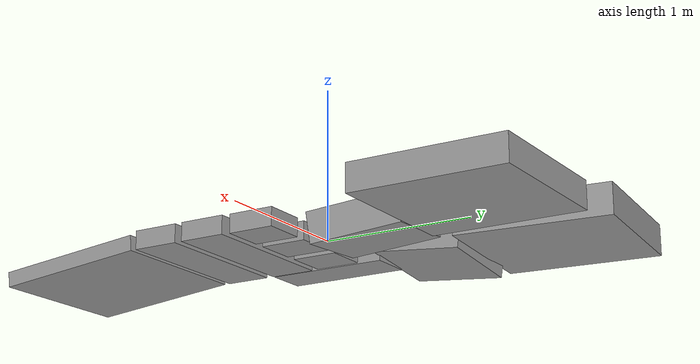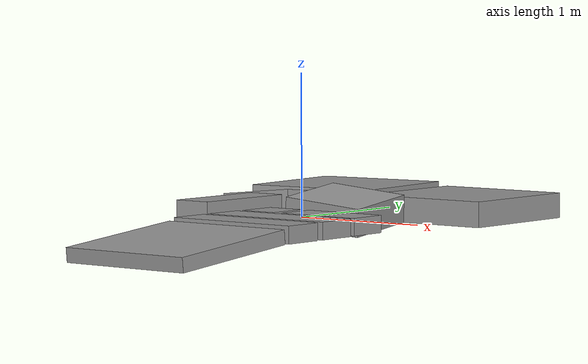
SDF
<?xml version='1.0'?>
<sdf version='1.7'>
  <model name='terrain'>
    <link name='link_0'>
      <inertial>
        <mass>1</mass>
        <inertia>
          <ixx>0.166667</ixx>
          <ixy>0</ixy>
          <ixz>0</ixz>
          <iyy>0.166667</iyy>
          <iyz>0</iyz>
          <izz>0.166667</izz>
        </inertia>
        <pose>0 0 0 0 -0 0</pose>
      </inertial>
      <pose>0.181818 -0.819091 -0.01 0 -0 0</pose>
      <gravity>1</gravity>
      <self_collide>0</self_collide>
      <kinematic>0</kinematic>
      <enable_wind>0</enable_wind>
      <visual name='visual'>
        <pose>0 0 0 0 -0 0</pose>
        <geometry>
          <box>
            <size>1 0.3 0.12</size>
          </box>
        </geometry>
        <material>
          <lighting>1</lighting>
          <script>
            <uri>file://media/materials/scripts/gazebo.material</uri>
            <name>Gazebo/Grey</name>
          </script>
          <shader type='pixel'>
            <normal_map>__default__</normal_map>
          </shader>
          <ambient>0.3 0.3 0.3 1</ambient>
          <diffuse>0.7 0.7 0.7 1</diffuse>
          <specular>0.01 0.01 0.01 1</specular>
          <emissive>0 0 0 1</emissive>
        </material>
        <transparency>0</transparency>
        <cast_shadows>1</cast_shadows>
      </visual>
      <collision name='collision'>
        <laser_retro>0</laser_retro>
        <max_contacts>10</max_contacts>
        <pose>0 0 0 0 -0 0</pose>
        <geometry>
          <box>
            <size>1 1 1</size>
          </box>
        </geometry>
        <surface>
          <friction>
            <ode>
              <mu>1</mu>
              <mu2>1</mu2>
              <fdir1>0 0 0</fdir1>
              <slip1>0</slip1>
              <slip2>0</slip2>
            </ode>
            <torsional>
              <coefficient>1</coefficient>
              <patch_radius>0</patch_radius>
              <surface_radius>0</surface_radius>
              <use_patch_radius>1</use_patch_radius>
              <ode>
                <slip>0</slip>
              </ode>
            </torsional>
          </friction>
          <bounce>
            <restitution_coefficient>0</restitution_coefficient>
            <threshold>1e+06</threshold>
          </bounce>
          <contact>
            <collide_without_contact>0</collide_without_contact>
            <collide_without_contact_bitmask>1</collide_without_contact_bitmask>
            <collide_bitmask>1</collide_bitmask>
            <ode>
              <soft_cfm>0</soft_cfm>
              <soft_erp>0.2</soft_erp>
              <kp>1e+13</kp>
              <kd>1</kd>
              <max_vel>0.01</max_vel>
              <min_depth>0</min_depth>
            </ode>
            <bullet>
              <split_impulse>1</split_impulse>
              <split_impulse_penetration_threshold>-0.01</split_impulse_penetration_threshold>
              <soft_cfm>0</soft_cfm>
              <soft_erp>0.2</soft_erp>
              <kp>1e+13</kp>
              <kd>1</kd>
            </bullet>
          </contact>
        </surface>
      </collision>
    </link>
    <link name='link_0_clone'>
      <inertial>
        <mass>1</mass>
        <inertia>
          <ixx>0.166667</ixx>
          <ixy>0</ixy>
          <ixz>0</ixz>
          <iyy>0.166667</iyy>
          <iyz>0</iyz>
          <izz>0.166667</izz>
        </inertia>
        <pose>0 0 0 0 -0 0</pose>
      </inertial>
      <pose>0.181818 -0.469091 -0.01 0 -0 0</pose>
      <gravity>1</gravity>
      <self_collide>0</self_collide>
      <kinematic>0</kinematic>
      <enable_wind>0</enable_wind>
      <visual name='visual'>
        <pose>0 0 0 0 -0 0</pose>
        <geometry>
          <box>
            <size>1 0.3 0.12</size>
          </box>
        </geometry>
        <material>
          <lighting>1</lighting>
          <script>
            <uri>file://media/materials/scripts/gazebo.material</uri>
            <name>Gazebo/Grey</name>
          </script>
          <shader type='pixel'>
            <normal_map>__default__</normal_map>
          </shader>
          <ambient>0.3 0.3 0.3 1</ambient>
          <diffuse>0.7 0.7 0.7 1</diffuse>
          <specular>0.01 0.01 0.01 1</specular>
          <emissive>0 0 0 1</emissive>
        </material>
        <transparency>0</transparency>
        <cast_shadows>1</cast_shadows>
      </visual>
      <collision name='collision'>
        <laser_retro>0</laser_retro>
        <max_contacts>10</max_contacts>
        <pose>0 0 0 0 -0 0</pose>
        <geometry>
          <box>
            <size>1 1 1</size>
          </box>
        </geometry>
        <surface>
          <friction>
            <ode>
              <mu>1</mu>
              <mu2>1</mu2>
              <fdir1>0 0 0</fdir1>
              <slip1>0</slip1>
              <slip2>0</slip2>
            </ode>
            <torsional>
              <coefficient>1</coefficient>
              <patch_radius>0</patch_radius>
              <surface_radius>0</surface_radius>
              <use_patch_radius>1</use_patch_radius>
              <ode>
                <slip>0</slip>
              </ode>
            </torsional>
          </friction>
          <bounce>
            <restitution_coefficient>0</restitution_coefficient>
            <threshold>1e+06</threshold>
          </bounce>
          <contact>
            <collide_without_contact>0</collide_without_contact>
            <collide_without_contact_bitmask>1</collide_without_contact_bitmask>
            <collide_bitmask>1</collide_bitmask>
            <ode>
              <soft_cfm>0</soft_cfm>
              <soft_erp>0.2</soft_erp>
              <kp>1e+13</kp>
              <kd>1</kd>
              <max_vel>0.01</max_vel>
              <min_depth>0</min_depth>
            </ode>
            <bullet>
              <split_impulse>1</split_impulse>
              <split_impulse_penetration_threshold>-0.01</split_impulse_penetration_threshold>
              <soft_cfm>0</soft_cfm>
              <soft_erp>0.2</soft_erp>
              <kp>1e+13</kp>
              <kd>1</kd>
            </bullet>
          </contact>
        </surface>
      </collision>
    </link>
    <link name='link_1'>
      <inertial>
        <mass>1</mass>
        <inertia>
          <ixx>0.166667</ixx>
          <ixy>0</ixy>
          <ixz>0</ixz>
          <iyy>0.166667</iyy>
          <iyz>0</iyz>
          <izz>0.166667</izz>
        </inertia>
        <pose>0 0 0 0 -0 0</pose>
      </inertial>
      <pose>-0.168182 -0.119091 -0.01 0 -0 0</pose>
      <gravity>1</gravity>
      <self_collide>0</self_collide>
      <kinematic>0</kinematic>
      <enable_wind>0</enable_wind>
      <visual name='visual'>
        <pose>0 0 0 0 -0 0</pose>
        <geometry>
          <box>
            <size>0.28 0.3 0.12</size>
          </box>
        </geometry>
        <material>
          <lighting>1</lighting>
          <script>
            <uri>file://media/materials/scripts/gazebo.material</uri>
            <name>Gazebo/Grey</name>
          </script>
          <shader type='pixel'>
            <normal_map>__default__</normal_map>
          </shader>
          <ambient>0.3 0.3 0.3 1</ambient>
          <diffuse>0.7 0.7 0.7 1</diffuse>
          <specular>0.01 0.01 0.01 1</specular>
          <emissive>0 0 0 1</emissive>
        </material>
        <transparency>0</transparency>
        <cast_shadows>1</cast_shadows>
      </visual>
      <collision name='collision'>
        <laser_retro>0</laser_retro>
        <max_contacts>10</max_contacts>
        <pose>0 0 0 0 -0 0</pose>
        <geometry>
          <box>
            <size>1 1 1</size>
          </box>
        </geometry>
        <surface>
          <friction>
            <ode>
              <mu>1</mu>
              <mu2>1</mu2>
              <fdir1>0 0 0</fdir1>
              <slip1>0</slip1>
              <slip2>0</slip2>
            </ode>
            <torsional>
              <coefficient>1</coefficient>
              <patch_radius>0</patch_radius>
              <surface_radius>0</surface_radius>
              <use_patch_radius>1</use_patch_radius>
              <ode>
                <slip>0</slip>
              </ode>
            </torsional>
          </friction>
          <bounce>
            <restitution_coefficient>0</restitution_coefficient>
            <threshold>1e+06</threshold>
          </bounce>
          <contact>
            <collide_without_contact>0</collide_without_contact>
            <collide_without_contact_bitmask>1</collide_without_contact_bitmask>
            <collide_bitmask>1</collide_bitmask>
            <ode>
              <soft_cfm>0</soft_cfm>
              <soft_erp>0.2</soft_erp>
              <kp>1e+13</kp>
              <kd>1</kd>
              <max_vel>0.01</max_vel>
              <min_depth>0</min_depth>
            </ode>
            <bullet>
              <split_impulse>1</split_impulse>
              <split_impulse_penetration_threshold>-0.01</split_impulse_penetration_threshold>
              <soft_cfm>0</soft_cfm>
              <soft_erp>0.2</soft_erp>
              <kp>1e+13</kp>
              <kd>1</kd>
            </bullet>
          </contact>
        </surface>
      </collision>
    </link>
    <link name='link_1_clone'>
      <inertial>
        <mass>1</mass>
        <inertia>
          <ixx>0.166667</ixx>
          <ixy>0</ixy>
          <ixz>0</ixz>
          <iyy>0.166667</iyy>
          <iyz>0</iyz>
          <izz>0.166667</izz>
        </inertia>
        <pose>0 0 0 0 -0 0</pose>
      </inertial>
      <pose>0.181818 -0.119091 -0.01 0 -0 0</pose>
      <gravity>1</gravity>
      <self_collide>0</self_collide>
      <kinematic>0</kinematic>
      <enable_wind>0</enable_wind>
      <visual name='visual'>
        <pose>0 0 0 0 -0 0</pose>
        <geometry>
          <box>
            <size>0.28 0.3 0.12</size>
          </box>
        </geometry>
        <material>
          <lighting>1</lighting>
          <script>
            <uri>file://media/materials/scripts/gazebo.material</uri>
            <name>Gazebo/Grey</name>
          </script>
          <shader type='pixel'>
            <normal_map>__default__</normal_map>
          </shader>
          <ambient>0.3 0.3 0.3 1</ambient>
          <diffuse>0.7 0.7 0.7 1</diffuse>
          <specular>0.01 0.01 0.01 1</specular>
          <emissive>0 0 0 1</emissive>
        </material>
        <transparency>0</transparency>
        <cast_shadows>1</cast_shadows>
      </visual>
      <collision name='collision'>
        <laser_retro>0</laser_retro>
        <max_contacts>10</max_contacts>
        <pose>0 0 0 0 -0 0</pose>
        <geometry>
          <box>
            <size>1 1 1</size>
          </box>
        </geometry>
        <surface>
          <friction>
            <ode>
              <mu>1</mu>
              <mu2>1</mu2>
              <fdir1>0 0 0</fdir1>
              <slip1>0</slip1>
              <slip2>0</slip2>
            </ode>
            <torsional>
              <coefficient>1</coefficient>
              <patch_radius>0</patch_radius>
              <surface_radius>0</surface_radius>
              <use_patch_radius>1</use_patch_radius>
              <ode>
                <slip>0</slip>
              </ode>
            </torsional>
          </friction>
          <bounce>
            <restitution_coefficient>0</restitution_coefficient>
            <threshold>1e+06</threshold>
          </bounce>
          <contact>
            <collide_without_contact>0</collide_without_contact>
            <collide_without_contact_bitmask>1</collide_without_contact_bitmask>
            <collide_bitmask>1</collide_bitmask>
            <ode>
              <soft_cfm>0</soft_cfm>
              <soft_erp>0.2</soft_erp>
              <kp>1e+13</kp>
              <kd>1</kd>
              <max_vel>0.01</max_vel>
              <min_depth>0</min_depth>
            </ode>
            <bullet>
              <split_impulse>1</split_impulse>
              <split_impulse_penetration_threshold>-0.01</split_impulse_penetration_threshold>
              <soft_cfm>0</soft_cfm>
              <soft_erp>0.2</soft_erp>
              <kp>1e+13</kp>
              <kd>1</kd>
            </bullet>
          </contact>
        </surface>
      </collision>
    </link>
    <link name='link_1_clone_0'>
      <inertial>
        <mass>1</mass>
        <inertia>
          <ixx>0.166667</ixx>
          <ixy>0</ixy>
          <ixz>0</ixz>
          <iyy>0.166667</iyy>
          <iyz>0</iyz>
          <izz>0.166667</izz>
        </inertia>
        <pose>0 0 0 0 -0 0</pose>
      </inertial>
      <pose>-0.468182 -0.219091 0.03 0 -0 0</pose>
      <gravity>1</gravity>
      <self_collide>0</self_collide>
      <kinematic>0</kinematic>
      <enable_wind>0</enable_wind>
      <visual name='visual'>
        <pose>0 0 0 0 -0 0</pose>
        <geometry>
          <box>
            <size>0.28 0.8 0.2</size>
          </box>
        </geometry>
        <material>
          <lighting>1</lighting>
          <script>
            <uri>file://media/materials/scripts/gazebo.material</uri>
            <name>Gazebo/Grey</name>
          </script>
          <shader type='pixel'>
            <normal_map>__default__</normal_map>
          </shader>
          <ambient>0.3 0.3 0.3 1</ambient>
          <diffuse>0.7 0.7 0.7 1</diffuse>
          <specular>0.01 0.01 0.01 1</specular>
          <emissive>0 0 0 1</emissive>
        </material>
        <transparency>0</transparency>
        <cast_shadows>1</cast_shadows>
      </visual>
      <collision name='collision'>
        <laser_retro>0</laser_retro>
        <max_contacts>10</max_contacts>
        <pose>0 0 0 0 -0 0</pose>
        <geometry>
          <box>
            <size>1 1 1</size>
          </box>
        </geometry>
        <surface>
          <friction>
            <ode>
              <mu>1</mu>
              <mu2>1</mu2>
              <fdir1>0 0 0</fdir1>
              <slip1>0</slip1>
              <slip2>0</slip2>
            </ode>
            <torsional>
              <coefficient>1</coefficient>
              <patch_radius>0</patch_radius>
              <surface_radius>0</surface_radius>
              <use_patch_radius>1</use_patch_radius>
              <ode>
                <slip>0</slip>
              </ode>
            </torsional>
          </friction>
          <bounce>
            <restitution_coefficient>0</restitution_coefficient>
            <threshold>1e+06</threshold>
          </bounce>
          <contact>
            <collide_without_contact>0</collide_without_contact>
            <collide_without_contact_bitmask>1</collide_without_contact_bitmask>
            <collide_bitmask>1</collide_bitmask>
            <ode>
              <soft_cfm>0</soft_cfm>
              <soft_erp>0.2</soft_erp>
              <kp>1e+13</kp>
              <kd>1</kd>
              <max_vel>0.01</max_vel>
              <min_depth>0</min_depth>
            </ode>
            <bullet>
              <split_impulse>1</split_impulse>
              <split_impulse_penetration_threshold>-0.01</split_impulse_penetration_threshold>
              <soft_cfm>0</soft_cfm>
              <soft_erp>0.2</soft_erp>
              <kp>1e+13</kp>
              <kd>1</kd>
            </bullet>
          </contact>
        </surface>
      </collision>
    </link>
    <link name='link_1_clone_clone'>
      <inertial>
        <mass>1</mass>
        <inertia>
          <ixx>0.166667</ixx>
          <ixy>0</ixy>
          <ixz>0</ixz>
          <iyy>0.166667</iyy>
          <iyz>0</iyz>
          <izz>0.166667</izz>
        </inertia>
        <pose>0 0 0 0 -0 0</pose>
      </inertial>
      <pose>0.531818 -0.119091 -0.01 0 -0 0</pose>
      <gravity>1</gravity>
      <self_collide>0</self_collide>
      <kinematic>0</kinematic>
      <enable_wind>0</enable_wind>
      <visual name='visual'>
        <pose>0 0 0 0 -0 0</pose>
        <geometry>
          <box>
            <size>0.28 0.3 0.12</size>
          </box>
        </geometry>
        <material>
          <lighting>1</lighting>
          <script>
            <uri>file://media/materials/scripts/gazebo.material</uri>
            <name>Gazebo/Grey</name>
          </script>
          <shader type='pixel'>
            <normal_map>__default__</normal_map>
          </shader>
          <ambient>0.3 0.3 0.3 1</ambient>
          <diffuse>0.7 0.7 0.7 1</diffuse>
          <specular>0.01 0.01 0.01 1</specular>
          <emissive>0 0 0 1</emissive>
        </material>
        <transparency>0</transparency>
        <cast_shadows>1</cast_shadows>
      </visual>
      <collision name='collision'>
        <laser_retro>0</laser_retro>
        <max_contacts>10</max_contacts>
        <pose>0 0 0 0 -0 0</pose>
        <geometry>
          <box>
            <size>1 1 1</size>
          </box>
        </geometry>
        <surface>
          <friction>
            <ode>
              <mu>1</mu>
              <mu2>1</mu2>
              <fdir1>0 0 0</fdir1>
              <slip1>0</slip1>
              <slip2>0</slip2>
            </ode>
            <torsional>
              <coefficient>1</coefficient>
              <patch_radius>0</patch_radius>
              <surface_radius>0</surface_radius>
              <use_patch_radius>1</use_patch_radius>
              <ode>
                <slip>0</slip>
              </ode>
            </torsional>
          </friction>
          <bounce>
            <restitution_coefficient>0</restitution_coefficient>
            <threshold>1e+06</threshold>
          </bounce>
          <contact>
            <collide_without_contact>0</collide_without_contact>
            <collide_without_contact_bitmask>1</collide_without_contact_bitmask>
            <collide_bitmask>1</collide_bitmask>
            <ode>
              <soft_cfm>0</soft_cfm>
              <soft_erp>0.2</soft_erp>
              <kp>1e+13</kp>
              <kd>1</kd>
              <max_vel>0.01</max_vel>
              <min_depth>0</min_depth>
            </ode>
            <bullet>
              <split_impulse>1</split_impulse>
              <split_impulse_penetration_threshold>-0.01</split_impulse_penetration_threshold>
              <soft_cfm>0</soft_cfm>
              <soft_erp>0.2</soft_erp>
              <kp>1e+13</kp>
              <kd>1</kd>
            </bullet>
          </contact>
        </surface>
      </collision>
    </link>
    <link name='link_2'>
      <inertial>
        <mass>1</mass>
        <inertia>
          <ixx>0.166667</ixx>
          <ixy>0</ixy>
          <ixz>0</ixz>
          <iyy>0.166667</iyy>
          <iyz>0</iyz>
          <izz>0.166667</izz>
        </inertia>
        <pose>0 0 0 0 -0 0</pose>
      </inertial>
      <pose>0.181818 -1.50909 -0.07 0.1 -0 0</pose>
      <gravity>1</gravity>
      <self_collide>0</self_collide>
      <kinematic>0</kinematic>
      <enable_wind>0</enable_wind>
      <visual name='visual'>
        <pose>0 0 0 0 -0 0</pose>
        <geometry>
          <box>
            <size>1 1 0.1</size>
          </box>
        </geometry>
        <material>
          <lighting>1</lighting>
          <script>
            <uri>file://media/materials/scripts/gazebo.material</uri>
            <name>Gazebo/Grey</name>
          </script>
          <shader type='pixel'>
            <normal_map>__default__</normal_map>
          </shader>
          <ambient>0.3 0.3 0.3 1</ambient>
          <diffuse>0.7 0.7 0.7 1</diffuse>
          <specular>0.01 0.01 0.01 1</specular>
          <emissive>0 0 0 1</emissive>
        </material>
        <transparency>0</transparency>
        <cast_shadows>1</cast_shadows>
      </visual>
      <collision name='collision'>
        <laser_retro>0</laser_retro>
        <max_contacts>10</max_contacts>
        <pose>0 0 0 0 -0 0</pose>
        <geometry>
          <box>
            <size>1 1 1</size>
          </box>
        </geometry>
        <surface>
          <friction>
            <ode>
              <mu>1</mu>
              <mu2>1</mu2>
              <fdir1>0 0 0</fdir1>
              <slip1>0</slip1>
              <slip2>0</slip2>
            </ode>
            <torsional>
              <coefficient>1</coefficient>
              <patch_radius>0</patch_radius>
              <surface_radius>0</surface_radius>
              <use_patch_radius>1</use_patch_radius>
              <ode>
                <slip>0</slip>
              </ode>
            </torsional>
          </friction>
          <bounce>
            <restitution_coefficient>0</restitution_coefficient>
            <threshold>1e+06</threshold>
          </bounce>
          <contact>
            <collide_without_contact>0</collide_without_contact>
            <collide_without_contact_bitmask>1</collide_without_contact_bitmask>
            <collide_bitmask>1</collide_bitmask>
            <ode>
              <soft_cfm>0</soft_cfm>
              <soft_erp>0.2</soft_erp>
              <kp>1e+13</kp>
              <kd>1</kd>
              <max_vel>0.01</max_vel>
              <min_depth>0</min_depth>
            </ode>
            <bullet>
              <split_impulse>1</split_impulse>
              <split_impulse_penetration_threshold>-0.01</split_impulse_penetration_threshold>
              <soft_cfm>0</soft_cfm>
              <soft_erp>0.2</soft_erp>
              <kp>1e+13</kp>
              <kd>1</kd>
            </bullet>
          </contact>
        </surface>
      </collision>
    </link>
    <link name='link_3'>
      <inertial>
        <mass>1</mass>
        <inertia>
          <ixx>0.166667</ixx>
          <ixy>0</ixy>
          <ixz>0</ixz>
          <iyy>0.166667</iyy>
          <iyz>0</iyz>
          <izz>0.166667</izz>
        </inertia>
        <pose>0 0 0 0 -0 0</pose>
      </inertial>
      <pose>0.081818 0.380909 0.03 0.1 0.1 0.1</pose>
      <gravity>1</gravity>
      <self_collide>0</self_collide>
      <kinematic>0</kinematic>
      <enable_wind>0</enable_wind>
      <visual name='visual'>
        <pose>0 0 0 0 -0 0</pose>
        <geometry>
          <box>
            <size>0.6 0.6 0.2</size>
          </box>
        </geometry>
        <material>
          <lighting>1</lighting>
          <script>
            <uri>file://media/materials/scripts/gazebo.material</uri>
            <name>Gazebo/Grey</name>
          </script>
          <shader type='pixel'>
            <normal_map>__default__</normal_map>
          </shader>
          <ambient>0.3 0.3 0.3 1</ambient>
          <diffuse>0.7 0.7 0.7 1</diffuse>
          <specular>0.01 0.01 0.01 1</specular>
          <emissive>0 0 0 1</emissive>
        </material>
        <transparency>0</transparency>
        <cast_shadows>1</cast_shadows>
      </visual>
      <collision name='collision'>
        <laser_retro>0</laser_retro>
        <max_contacts>10</max_contacts>
        <pose>0 0 0 0 -0 0</pose>
        <geometry>
          <box>
            <size>1 1 1</size>
          </box>
        </geometry>
        <surface>
          <friction>
            <ode>
              <mu>1</mu>
              <mu2>1</mu2>
              <fdir1>0 0 0</fdir1>
              <slip1>0</slip1>
              <slip2>0</slip2>
            </ode>
            <torsional>
              <coefficient>1</coefficient>
              <patch_radius>0</patch_radius>
              <surface_radius>0</surface_radius>
              <use_patch_radius>1</use_patch_radius>
              <ode>
                <slip>0</slip>
              </ode>
            </torsional>
          </friction>
          <bounce>
            <restitution_coefficient>0</restitution_coefficient>
            <threshold>1e+06</threshold>
          </bounce>
          <contact>
            <collide_without_contact>0</collide_without_contact>
            <collide_without_contact_bitmask>1</collide_without_contact_bitmask>
            <collide_bitmask>1</collide_bitmask>
            <ode>
              <soft_cfm>0</soft_cfm>
              <soft_erp>0.2</soft_erp>
              <kp>1e+13</kp>
              <kd>1</kd>
              <max_vel>0.01</max_vel>
              <min_depth>0</min_depth>
            </ode>
            <bullet>
              <split_impulse>1</split_impulse>
              <split_impulse_penetration_threshold>-0.01</split_impulse_penetration_threshold>
              <soft_cfm>0</soft_cfm>
              <soft_erp>0.2</soft_erp>
              <kp>1e+13</kp>
              <kd>1</kd>
            </bullet>
          </contact>
        </surface>
      </collision>
    </link>
    <link name='link_3_clone'>
      <inertial>
        <mass>1</mass>
        <inertia>
          <ixx>0.166667</ixx>
          <ixy>0</ixy>
          <ixz>0</ixz>
          <iyy>0.166667</iyy>
          <iyz>0</iyz>
          <izz>0.166667</izz>
        </inertia>
        <pose>0 0 0 0 -0 0</pose>
      </inertial>
      <pose>-0.568182 0.480909 0.01 -0.1 -0.1 0</pose>
      <gravity>1</gravity>
      <self_collide>0</self_collide>
      <kinematic>0</kinematic>
      <enable_wind>0</enable_wind>
      <visual name='visual'>
        <pose>0 0 0 0 -0 0</pose>
        <geometry>
          <box>
            <size>0.6 0.6 0.2</size>
          </box>
        </geometry>
        <material>
          <lighting>1</lighting>
          <script>
            <uri>file://media/materials/scripts/gazebo.material</uri>
            <name>Gazebo/Grey</name>
          </script>
          <shader type='pixel'>
            <normal_map>__default__</normal_map>
          </shader>
          <ambient>0.3 0.3 0.3 1</ambient>
          <diffuse>0.7 0.7 0.7 1</diffuse>
          <specular>0.01 0.01 0.01 1</specular>
          <emissive>0 0 0 1</emissive>
        </material>
        <transparency>0</transparency>
        <cast_shadows>1</cast_shadows>
      </visual>
      <collision name='collision'>
        <laser_retro>0</laser_retro>
        <max_contacts>10</max_contacts>
        <pose>0 0 0 0 -0 0</pose>
        <geometry>
          <box>
            <size>1 1 1</size>
          </box>
        </geometry>
        <surface>
          <friction>
            <ode>
              <mu>1</mu>
              <mu2>1</mu2>
              <fdir1>0 0 0</fdir1>
              <slip1>0</slip1>
              <slip2>0</slip2>
            </ode>
            <torsional>
              <coefficient>1</coefficient>
              <patch_radius>0</patch_radius>
              <surface_radius>0</surface_radius>
              <use_patch_radius>1</use_patch_radius>
              <ode>
                <slip>0</slip>
              </ode>
            </torsional>
          </friction>
          <bounce>
            <restitution_coefficient>0</restitution_coefficient>
            <threshold>1e+06</threshold>
          </bounce>
          <contact>
            <collide_without_contact>0</collide_without_contact>
            <collide_without_contact_bitmask>1</collide_without_contact_bitmask>
            <collide_bitmask>1</collide_bitmask>
            <ode>
              <soft_cfm>0</soft_cfm>
              <soft_erp>0.2</soft_erp>
              <kp>1e+13</kp>
              <kd>1</kd>
              <max_vel>0.01</max_vel>
              <min_depth>0</min_depth>
            </ode>
            <bullet>
              <split_impulse>1</split_impulse>
              <split_impulse_penetration_threshold>-0.01</split_impulse_penetration_threshold>
              <soft_cfm>0</soft_cfm>
              <soft_erp>0.2</soft_erp>
              <kp>1e+13</kp>
              <kd>1</kd>
            </bullet>
          </contact>
        </surface>
      </collision>
    </link>
    <link name='link_4'>
      <inertial>
        <mass>1</mass>
        <inertia>
          <ixx>0.166667</ixx>
          <ixy>0</ixy>
          <ixz>0</ixz>
          <iyy>0.166667</iyy>
          <iyz>0</iyz>
          <izz>0.166667</izz>
        </inertia>
        <pose>0 0 0 0 -0 0</pose>
      </inertial>
      <pose>-0.618182 1.28091 0.03 0 -0 0.1</pose>
      <gravity>1</gravity>
      <self_collide>0</self_collide>
      <kinematic>0</kinematic>
      <enable_wind>0</enable_wind>
      <visual name='visual'>
        <pose>0 0 0 0 -0 0</pose>
        <geometry>
          <box>
            <size>1 1 0.2</size>
          </box>
        </geometry>
        <material>
          <lighting>1</lighting>
          <script>
            <uri>file://media/materials/scripts/gazebo.material</uri>
            <name>Gazebo/Grey</name>
          </script>
          <shader type='pixel'>
            <normal_map>__default__</normal_map>
          </shader>
          <ambient>0.3 0.3 0.3 1</ambient>
          <diffuse>0.7 0.7 0.7 1</diffuse>
          <specular>0.01 0.01 0.01 1</specular>
          <emissive>0 0 0 1</emissive>
        </material>
        <transparency>0</transparency>
        <cast_shadows>1</cast_shadows>
      </visual>
      <collision name='collision'>
        <laser_retro>0</laser_retro>
        <max_contacts>10</max_contacts>
        <pose>0 0 0 0 -0 0</pose>
        <geometry>
          <box>
            <size>1 1 1</size>
          </box>
        </geometry>
        <surface>
          <friction>
            <ode>
              <mu>1</mu>
              <mu2>1</mu2>
              <fdir1>0 0 0</fdir1>
              <slip1>0</slip1>
              <slip2>0</slip2>
            </ode>
            <torsional>
              <coefficient>1</coefficient>
              <patch_radius>0</patch_radius>
              <surface_radius>0</surface_radius>
              <use_patch_radius>1</use_patch_radius>
              <ode>
                <slip>0</slip>
              </ode>
            </torsional>
          </friction>
          <bounce>
            <restitution_coefficient>0</restitution_coefficient>
            <threshold>1e+06</threshold>
          </bounce>
          <contact>
            <collide_without_contact>0</collide_without_contact>
            <collide_without_contact_bitmask>1</collide_without_contact_bitmask>
            <collide_bitmask>1</collide_bitmask>
            <ode>
              <soft_cfm>0</soft_cfm>
              <soft_erp>0.2</soft_erp>
              <kp>1e+13</kp>
              <kd>1</kd>
              <max_vel>0.01</max_vel>
              <min_depth>0</min_depth>
            </ode>
            <bullet>
              <split_impulse>1</split_impulse>
              <split_impulse_penetration_threshold>-0.01</split_impulse_penetration_threshold>
              <soft_cfm>0</soft_cfm>
              <soft_erp>0.2</soft_erp>
              <kp>1e+13</kp>
              <kd>1</kd>
            </bullet>
          </contact>
        </surface>
      </collision>
    </link>
    <link name='link_5'>
      <inertial>
        <mass>1</mass>
        <inertia>
          <ixx>0.166667</ixx>
          <ixy>0</ixy>
          <ixz>0</ixz>
          <iyy>0.166667</iyy>
          <iyz>0</iyz>
          <izz>0.166667</izz>
        </inertia>
        <pose>0 0 0 0 -0 0</pose>
      </inertial>
      <pose>0.481818 1.23091 0.02 0 -0 0</pose>
      <gravity>1</gravity>
      <self_collide>0</self_collide>
      <kinematic>0</kinematic>
      <enable_wind>0</enable_wind>
      <visual name='visual'>
        <pose>0 0 0 0 -0 0</pose>
        <geometry>
          <box>
            <size>1 1 0.18</size>
          </box>
        </geometry>
        <material>
          <lighting>1</lighting>
          <script>
            <uri>file://media/materials/scripts/gazebo.material</uri>
            <name>Gazebo/Grey</name>
          </script>
          <shader type='pixel'>
            <normal_map>__default__</normal_map>
          </shader>
          <ambient>0.3 0.3 0.3 1</ambient>
          <diffuse>0.7 0.7 0.7 1</diffuse>
          <specular>0.01 0.01 0.01 1</specular>
          <emissive>0 0 0 1</emissive>
        </material>
        <transparency>0</transparency>
        <cast_shadows>1</cast_shadows>
      </visual>
      <collision name='collision'>
        <laser_retro>0</laser_retro>
        <max_contacts>10</max_contacts>
        <pose>0 0 0 0 -0 0</pose>
        <geometry>
          <box>
            <size>1 1 1</size>
          </box>
        </geometry>
        <surface>
          <friction>
            <ode>
              <mu>1</mu>
              <mu2>1</mu2>
              <fdir1>0 0 0</fdir1>
              <slip1>0</slip1>
              <slip2>0</slip2>
            </ode>
            <torsional>
              <coefficient>1</coefficient>
              <patch_radius>0</patch_radius>
              <surface_radius>0</surface_radius>
              <use_patch_radius>1</use_patch_radius>
              <ode>
                <slip>0</slip>
              </ode>
            </torsional>
          </friction>
          <bounce>
            <restitution_coefficient>0</restitution_coefficient>
            <threshold>1e+06</threshold>
          </bounce>
          <contact>
            <collide_without_contact>0</collide_without_contact>
            <collide_without_contact_bitmask>1</collide_without_contact_bitmask>
            <collide_bitmask>1</collide_bitmask>
            <ode>
              <soft_cfm>0</soft_cfm>
              <soft_erp>0.2</soft_erp>
              <kp>1e+13</kp>
              <kd>1</kd>
              <max_vel>0.01</max_vel>
              <min_depth>0</min_depth>
            </ode>
            <bullet>
              <split_impulse>1</split_impulse>
              <split_impulse_penetration_threshold>-0.01</split_impulse_penetration_threshold>
              <soft_cfm>0</soft_cfm>
              <soft_erp>0.2</soft_erp>
              <kp>1e+13</kp>
              <kd>1</kd>
            </bullet>
          </contact>
        </surface>
      </collision>
    </link>
    <sensor name="kinect_camera" type="camera">
      <pose>0 0 1 0 0 0</pose>
      <camera>
        <horizontal_fov>1.047</horizontal_fov>
        <image>
          <width>640</width>
          <height>480</height>
          <format>R8G8B8</format>
        </image>
        <clip>
          <near>0.1</near>
          <far>100</far>
        </clip>
      </camera>
      <plugin name="kinect_plugin" filename="libgazebo_ros_camera.so">
        <camera_name>kinect_camera</camera_name>
        <image_topic>camera/image_raw</image_topic>
        <camera_info_topic>camera/camera_info</camera_info_topic>
      </plugin>
    </sensor>
    <static>0</static>
    <allow_auto_disable>1</allow_auto_disable>
  </model>
</sdf>
